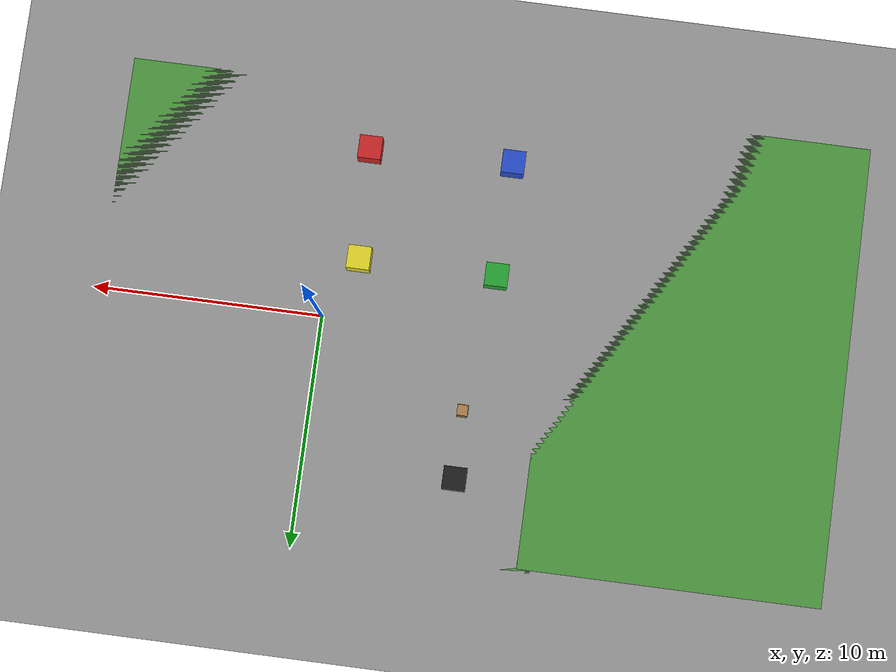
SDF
<sdf version="1.6">
 <world name="default">
  <light name="sun" type="directional">
   <pose>0 0 10 0 -0 0</pose>
   <diffuse>0.8 0.8 0.8 1</diffuse>
   <specular>0.1 0.1 0.1 1</specular>
   <attenuation>
    <range>1000</range>
    <constant>0.9</constant>
    <linear>0.01</linear>
    <quadratic>0.001</quadratic>
   </attenuation>
   <direction>-0.5 0.5 -1</direction>
  </light>
  <model name="ground_plane">
   <static>1</static>
   <link name="link">
    <collision name="collision">
     <geometry><plane><normal>0 0 1</normal><size>100 100</size></plane></geometry>
     <surface><friction><ode><mu>100</mu><mu2>50</mu2></ode></friction></surface>
    </collision>
    <visual name="visual">
     <cast_shadows>0</cast_shadows>
     <geometry><plane><normal>0 0 1</normal><size>100 100</size></plane></geometry>
     <material>
      <script><uri>file://media/materials/scripts/gazebo.material</uri><name>Gazebo/Grey</name></script>
     </material>
    </visual>
   </link>
  </model>
  <gravity>0 0 -9.8</gravity>
  <magnetic_field>6e-06 2.3e-05 -4.2e-05</magnetic_field>
  <atmosphere type="adiabatic"/>
  <physics name="default_physics" default="0" type="ode">
   <max_step_size>0.001</max_step_size>
   <real_time_factor>1</real_time_factor>
   <real_time_update_rate>1000</real_time_update_rate>
  </physics>
  <scene><ambient>0.4 0.4 0.4 1</ambient><background>0.7 0.7 0.7 1</background><shadows>1</shadows></scene>
  <spherical_coordinates>
   <surface_model>EARTH_WGS84</surface_model>
   <latitude_deg>0</latitude_deg>
   <longitude_deg>0</longitude_deg>
   <elevation>0</elevation>
   <heading_deg>0</heading_deg>
  </spherical_coordinates>
  <model name="grass_plane">
   <static>1</static>
   <link name="link">
    <collision name="collision"><geometry><box><size>20 20 0.1</size></box></geometry></collision>
    <visual name="visual">
     <cast_shadows>0</cast_shadows>
     <geometry><box><size>20 20 0.1</size></box></geometry>
     <material>
      <script>
       <uri>model://grass_plane/materials/scripts</uri>
       <uri>model://grass_plane/materials/textures</uri>
       <name>vrc/grass</name>
      </script>
     </material>
    </visual>
   </link>
   <pose>-0.261401 -0.233537 0 0 -0 0</pose>
  </model>
  <model name="grass_plane_0">
   <static>1</static>
   <link name="link">
    <collision name="collision"><geometry><box><size>13.0296 20 0.1</size></box></geometry></collision>
    <visual name="visual">
     <cast_shadows>0</cast_shadows>
     <geometry><box><size>13.0296 20 0.1</size></box></geometry>
     <material>
      <script>
       <uri>model://grass_plane/materials/scripts</uri>
       <uri>model://grass_plane/materials/textures</uri>
       <name>vrc/grass</name>
      </script>
     </material>
    </visual>
   </link>
   <pose>-16.196 -0.352816 0 0 -0 0</pose>
  </model>
  <model name="ground_plane_0">
   <static>1</static>
   <link name="link">
    <collision name="collision">
     <geometry><plane><normal>0 0 1</normal><size>100 100</size></plane></geometry>
     <surface><friction><ode><mu>100</mu><mu2>50</mu2></ode></friction></surface>
    </collision>
    <visual name="visual">
     <cast_shadows>0</cast_shadows>
     <geometry><plane><normal>0 0 1</normal><size>100 100</size></plane></geometry>
     <material>
      <script><uri>file://media/materials/scripts/gazebo.material</uri><name>Gazebo/Grey</name></script>
     </material>
    </visual>
   </link>
   <pose>-28.6988 27.0596 0 0 -0 0</pose>
  </model>
  <model name="cabinet_0">
   <static>1</static>
   <link name="cabinet_bottom_plate">
    <inertial>
     <pose>0 0 -1 0 -0 0</pose>
     <inertia><ixx>2.05</ixx><ixy>0</ixy><ixz>0</ixz><iyy>2.05</iyy><iyz>0</iyz><izz>2.05</izz></inertia>
     <mass>25</mass>
    </inertial>
    <collision name="cabinet_bottom_plate_geom">
     <pose>0 0 0.01 0 -0 0</pose>
     <geometry><box><size>0.45 0.45 0.02</size></box></geometry>
    </collision>
    <visual name="cabinet_bottom_plate_geom_visual">
     <pose>0 0 0.01 0 -0 0</pose>
     <geometry><box><size>0.45 0.45 0.02</size></box></geometry>
     <material>
      <script><uri>file://media/materials/scripts/gazebo.material</uri><name>Gazebo/Wood</name></script>
     </material>
    </visual>
    <collision name="cabinet_bottom_plate_geom_cabinet_back_plate">
     <pose>0.235 0 0.51 0 -0 0</pose>
     <geometry><box><size>0.02 0.45 1.02</size></box></geometry>
    </collision>
    <visual name="cabinet_bottom_plate_geom_cabinet_back_plate_visual">
     <pose>0.235 0 0.51 0 -0 0</pose>
     <geometry><box><size>0.02 0.45 1.02</size></box></geometry>
     <material>
      <script><uri>file://media/materials/scripts/gazebo.material</uri><name>Gazebo/Wood</name></script>
     </material>
    </visual>
    <collision name="cabinet_bottom_plate_geom_cabinet_left_plate">
     <pose>0 0.235 0.51 0 -0 0</pose>
     <geometry><box><size>0.45 0.02 1.02</size></box></geometry>
    </collision>
    <visual name="cabinet_bottom_plate_geom_cabinet_left_plate_visual">
     <pose>0 0.235 0.51 0 -0 0</pose>
     <geometry><box><size>0.45 0.02 1.02</size></box></geometry>
     <material>
      <script><uri>file://media/materials/scripts/gazebo.material</uri><name>Gazebo/Wood</name></script>
     </material>
    </visual>
    <collision name="cabinet_bottom_plate_geom_cabinet_middle_plate">
     <pose>0 0 0.51 0 -0 0</pose>
     <geometry><box><size>0.45 0.45 0.02</size></box></geometry>
    </collision>
    <visual name="cabinet_bottom_plate_geom_cabinet_middle_plate_visual">
     <pose>0 0 0.51 0 -0 0</pose>
     <geometry><box><size>0.45 0.45 0.02</size></box></geometry>
     <material>
      <script><uri>file://media/materials/scripts/gazebo.material</uri><name>Gazebo/Wood</name></script>
     </material>
    </visual>
    <collision name="cabinet_bottom_plate_geom_cabinet_right_plate">
     <pose>0 -0.235 0.51 0 -0 0</pose>
     <geometry><box><size>0.45 0.02 1.02</size></box></geometry>
    </collision>
    <visual name="cabinet_bottom_plate_geom_cabinet_right_plate_visual">
     <pose>0 -0.235 0.51 0 -0 0</pose>
     <geometry><box><size>0.45 0.02 1.02</size></box></geometry>
     <material>
      <script><uri>file://media/materials/scripts/gazebo.material</uri><name>Gazebo/Wood</name></script>
     </material>
    </visual>
    <collision name="cabinet_bottom_plate_geom_cabinet_top_plate">
     <pose>0 0 1.01 0 -0 0</pose>
     <geometry><box><size>0.45 0.45 0.02</size></box></geometry>
    </collision>
    <visual name="cabinet_bottom_plate_geom_cabinet_top_plate_visual">
     <pose>0 0 1.01 0 -0 0</pose>
     <geometry><box><size>0.45 0.45 0.02</size></box></geometry>
     <material>
      <script><uri>file://media/materials/scripts/gazebo.material</uri><name>Gazebo/Wood</name></script>
     </material>
    </visual>
   </link>
   <pose>-6.53583 3.30319 0 0 -0 3.13725</pose>
  </model>
  <model name="unit_box">
   <pose>-1.12444 -7.43413 0.55 0 -0 0.000416</pose>
   <link name="link">
    <inertial>
     <mass>1</mass>
     <inertia><ixx>1</ixx><ixy>0</ixy><ixz>0</ixz><iyy>1</iyy><iyz>0</iyz><izz>1</izz></inertia>
    </inertial>
    <collision name="collision"><geometry><box><size>1 1 1</size></box></geometry></collision>
    <visual name="visual">
     <geometry><box><size>1 1 1</size></box></geometry>
     <material>
      <script><name>Gazebo/Red</name><uri>file://media/materials/scripts/gazebo.material</uri></script>
     </material>
    </visual>
   </link>
   <pose>-1.12468 -7.43488 0 0 -0 0</pose>
  </model>
  <model name="unit_box_0">
   <pose>-7.33262 -7.59693 0.55 0 -0 0.000405</pose>
   <link name="link">
    <inertial>
     <mass>1</mass>
     <inertia><ixx>1</ixx><ixy>0</ixy><ixz>0</ixz><iyy>1</iyy><iyz>0</iyz><izz>1</izz></inertia>
    </inertial>
    <collision name="collision"><geometry><box><size>1 1 1</size></box></geometry></collision>
    <visual name="visual">
     <geometry><box><size>1 1 1</size></box></geometry>
     <material>
      <script><name>Gazebo/Blue</name><uri>file://media/materials/scripts/gazebo.material</uri></script>
     </material>
    </visual>
   </link>
   <pose>-7.33285 -7.59769 0 0 -0 0</pose>
  </model>
  <model name="unit_box_1">
   <pose>-7.23903 -2.63743 0.55 0 -0 0.000405</pose>
   <link name="link">
    <inertial>
     <mass>1</mass>
     <inertia><ixx>1</ixx><ixy>0</ixy><ixz>0</ixz><iyy>1</iyy><iyz>0</iyz><izz>1</izz></inertia>
    </inertial>
    <collision name="collision"><geometry><box><size>1 1 1</size></box></geometry></collision>
    <visual name="visual">
     <geometry><box><size>1 1 1</size></box></geometry>
     <material>
      <script><name>Gazebo/Green</name><uri>file://media/materials/scripts/gazebo.material</uri></script>
     </material>
    </visual>
   </link>
   <pose>-7.23926 -2.63819 0 0 -0 0</pose>
  </model>
  <model name="unit_box_2">
   <pose>-1.29021 -2.61954 0.55 0 -0 0.000396</pose>
   <link name="link">
    <inertial>
     <mass>1</mass>
     <inertia><ixx>1</ixx><ixy>0</ixy><ixz>0</ixz><iyy>1</iyy><iyz>0</iyz><izz>1</izz></inertia>
    </inertial>
    <collision name="collision"><geometry><box><size>1 1 1</size></box></geometry></collision>
    <visual name="visual">
     <geometry><box><size>1 1 1</size></box></geometry>
     <material>
      <script><name>Gazebo/Yellow</name><uri>file://media/materials/scripts/gazebo.material</uri></script>
     </material>
    </visual>
   </link>
   <pose>-1.29044 -2.62029 0 0 -0 0</pose>
  </model>
  <model name="unit_box_3">
   <pose>-6.57835 6.21395 0.55 0 -0 0.000386</pose>
   <link name="link">
    <inertial>
     <mass>1</mass>
     <inertia><ixx>1</ixx><ixy>0</ixy><ixz>0</ixz><iyy>1</iyy><iyz>0</iyz><izz>1</izz></inertia>
    </inertial>
    <collision name="collision"><geometry><box><size>1 1 1</size></box></geometry></collision>
    <visual name="visual">
     <geometry><box><size>1 1 1</size></box></geometry>
     <material>
      <script><name>Gazebo/Black</name><uri>file://media/materials/scripts/gazebo.material</uri></script>
     </material>
    </visual>
   </link>
   <pose>-6.57858 6.21319 0 0 -0 0</pose>
  </model>
 </world>
</sdf>
